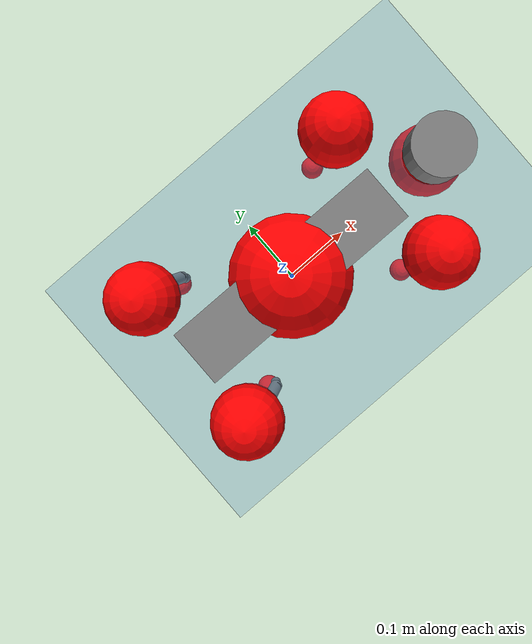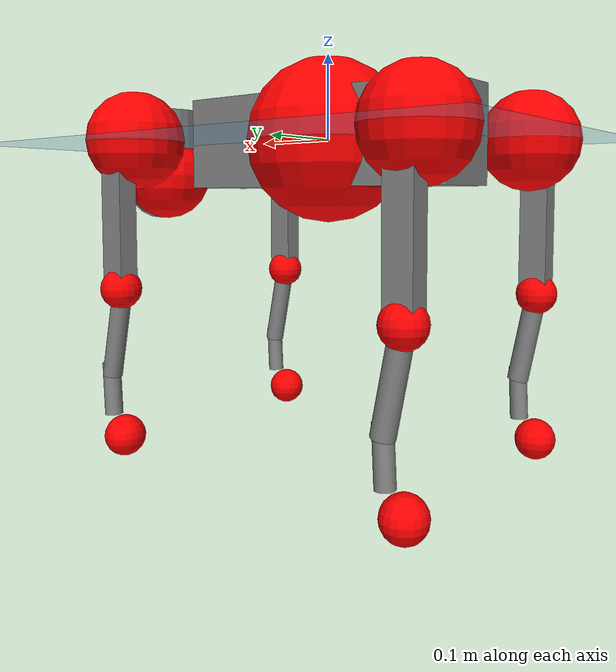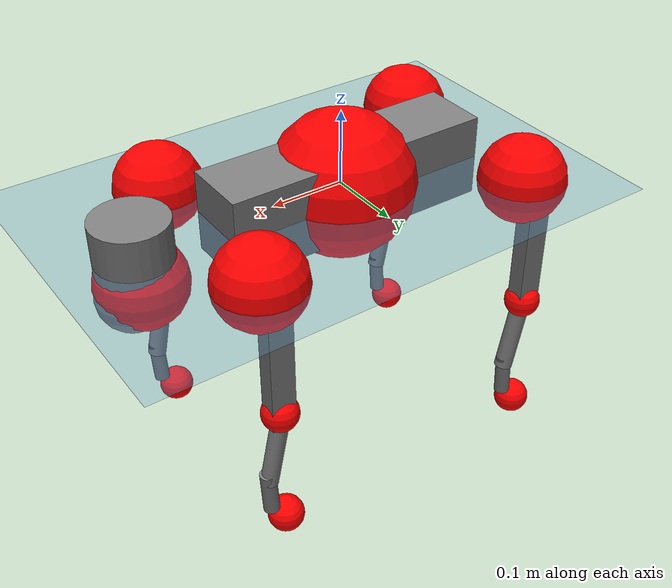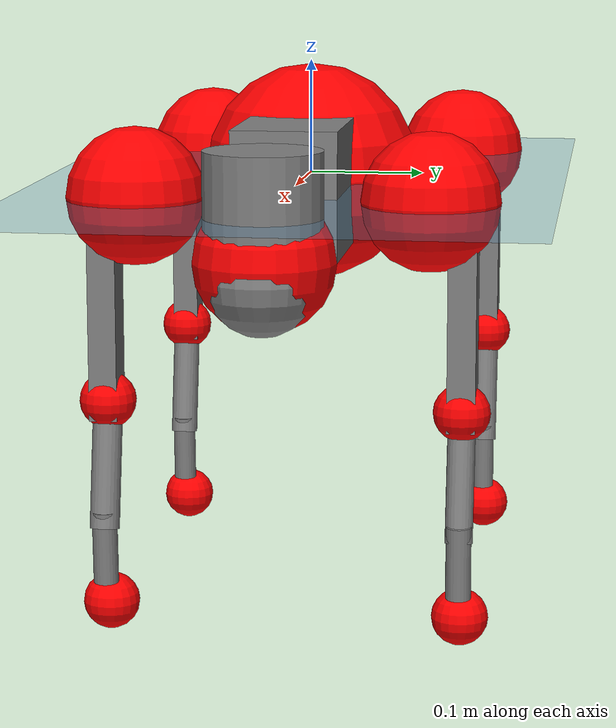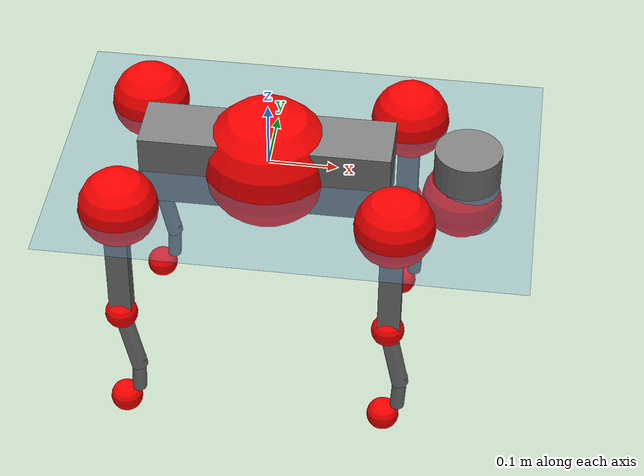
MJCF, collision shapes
<mujoco model="go2">
  <compiler angle="radian" assetdir="assets" balanceinertia="true" inertiafromgeom="false"/>

  <option timestep="0.005" density="1.2" viscosity="2e-05"/>

  <size nkey="1"/>

  <visual>
    <quality shadowsize="8192"/>
    <map shadowclip="0.5"/>
  </visual>

  <default>
    <default class="/">
      <geom contype="0" conaffinity="0" group="1" solref="-1000 -80"/>
      <site size="0.01 0.005 0.005" group="5"/>
      <general forcelimited="true" biastype="affine" gainprm="20" biasprm="0 -20 -0.5"/>
      <default class="go2">
        <joint armature="0.01" damping="0.01" frictionloss="0.2"/>
        <geom condim="1" margin="0.001"/>
        <default class="visual">
          <geom type="mesh" group="2"/>
        </default>
        <default class="collision">
          <geom group="3"/>
          <default class="foot">
            <geom size="0.022 0 0" condim="6" priority="1" friction="0.8 0.02 0.01" solimp="0.015 1 0.022"/>
          </default>
        </default>
        <default class="reward_collision_sphere">
          <geom group="5" rgba="1 0 0 1"/>
        </default>
      </default>
    </default>
  </default>

  <asset>
    <texture type="skybox" colorspace="auto" name="//unnamed_texture_0" builtin="gradient" rgb1="0.95 0.95 0.95" rgb2="0.95 0.95 0.95" width="100" height="600"/>
    <texture type="2d" colorspace="auto" name="texplane" builtin="checker" rgb1="0.345 0.575 0.748" rgb2="0.345 0.575 0.748" markrgb="1 1 1" width="512" height="512"/>
    <material name="MatPlane" class="/" texture="texplane" texuniform="true" texrepeat="2 2" specular="0.9"/>
    <material name="metal" class="/" rgba="0.9 0.95 0.95 1"/>
    <material name="black" class="/" rgba="0 0 0 1"/>
    <material name="white" class="/"/>
    <material name="gray" class="/" rgba="0.671705 0.692426 0.77427 1"/>
    <mesh name="base_0" class="/" file="base_0.obj"/>
    <mesh name="base_1" class="/" file="base_1.obj"/>
    <mesh name="base_2" class="/" file="base_2.obj"/>
    <mesh name="base_3" class="/" file="base_3.obj"/>
    <mesh name="base_4" class="/" file="base_4.obj"/>
    <mesh name="hip_0" class="/" file="hip_0.obj"/>
    <mesh name="hip_1" class="/" file="hip_1.obj"/>
    <mesh name="thigh_0" class="/" file="thigh_0.obj"/>
    <mesh name="thigh_1" class="/" file="thigh_1.obj"/>
    <mesh name="thigh_mirror_0" class="/" file="thigh_mirror_0.obj"/>
    <mesh name="thigh_mirror_1" class="/" file="thigh_mirror_1.obj"/>
    <mesh name="calf_0" class="/" file="calf_0.obj"/>
    <mesh name="calf_1" class="/" file="calf_1.obj"/>
    <mesh name="calf_mirror_0" class="/" file="calf_mirror_0.obj"/>
    <mesh name="calf_mirror_1" class="/" file="calf_mirror_1.obj"/>
    <mesh name="foot" class="/" file="foot.obj"/>
  </asset>

  <worldbody>
    <geom name="floor" class="/" size="100 100 0.125" type="plane" group="0" material="MatPlane"/>
    <light name="toplight_shadow" class="/" pos="0 0 5" dir="0.0990148 0.0990148 -0.990148" type="directional" ambient="0.04 0.04 0.04" diffuse="0.55 0.55 0.55" specular="0.12 0.12 0.12"/>
    <light name="toplight_fill" class="/" pos="0 0 5" dir="0.0990148 0.0990148 -0.990148" type="directional" castshadow="false" ambient="0.04 0.04 0.04" diffuse="0.3 0.3 0.3" specular="0.08 0.08 0.08"/>
    <body name="trunk" childclass="go2" pos="-0.00108007 0.000604597 0.000608614" quat="1 -7.54693e-06 6.37233e-07 -6.58199e-06">
      <inertial pos="0.0197496 3.23099e-05 -0.00451506" quat="-0.00210647 0.712115 -0.00314002 0.702053" mass="6.21654" diaginertia="0.113361 0.126785 0.00971519"/>
      <joint name="//unnamed_joint_0" type="free" armature="0" damping="0" frictionloss="0"/>
      <geom name="//unnamed_geom_1" class="visual" material="black" mesh="base_0"/>
      <geom name="//unnamed_geom_2" class="visual" material="black" mesh="base_1"/>
      <geom name="//unnamed_geom_3" class="visual" material="black" mesh="base_2"/>
      <geom name="//unnamed_geom_4" class="visual" material="white" mesh="base_3"/>
      <geom name="//unnamed_geom_5" class="visual" material="gray" mesh="base_4"/>
      <geom name="trunk_1" class="collision" size="0.181498 0.0451091 0.0549993" type="box"/>
      <geom name="trunk_2" class="collision" size="0.048245 0.0434205" pos="0.288298 0 0.00830386" type="cylinder"/>
      <geom name="trunk_3" class="collision" size="0.0453503" pos="0.29639 0 -0.0498232"/>
      <geom name="//unnamed_geom_9" class="reward_collision_sphere" size="0.0964901"/>
      <geom name="//unnamed_geom_10" class="reward_collision_sphere" size="0.057894" pos="0.28324 0 -0.0373674"/>
      <site name="imu" pos="-0.026915 -0.00231092 0.0345676" size="0.00964901"/>
      <camera name="track" pos="0 -2.10549 0" quat="0.707107 0.707107 0 0" mode="trackcom"/>
      <camera name="ego_camera" pos="0.31561 0 0.0373674" quat="-0.5 -0.5 0.5 0.5"/>
      <body name="FL_hip" pos="0.196053 0.0502566 0.00069084" quat="1 0.000488227 0.00016612 0.0001559">
        <inertial pos="-0.0067208 0.00311381 0.000853836" quat="0.49734 0.500312 0.504563 0.497752" mass="0.609184" diaginertia="0.000935099 0.000766462 0.000188156"/>
        <joint name="FL_hip_joint" pos="0 0 0" axis="0.999998 0.000731254 0.00159273" stiffness="0.0001397" range="-1.0432 1.03961" armature="0.00951273" damping="0.00603709" frictionloss="0.18589"/>
        <geom name="//unnamed_geom_11" class="visual" material="metal" mesh="hip_0"/>
        <geom name="//unnamed_geom_12" class="visual" material="gray" mesh="hip_1"/>
        <geom name="//unnamed_geom_13" class="collision" size="0.0443854 0.019298" pos="0 0.0842195 0" quat="0.707107 0.707107 0 0" type="cylinder"/>
        <geom name="//unnamed_geom_14" class="reward_collision_sphere" size="0.057894" pos="0 0.0736921 0"/>
        <body name="FL_thigh" pos="-0.000797899 0.101023 0.000581648" quat="1 5.16694e-05 5.33543e-05 -0.000105252">
          <inertial pos="-0.00288658 -0.0229797 -0.0264831" quat="0.829548 0.0840594 -0.0207318 0.551683" mass="1.03387" diaginertia="0.00631348 0.00758348 0.000350186"/>
          <joint name="FL_thigh_joint" pos="0 0 0" axis="5.19598e-05 1 1.38619e-05" stiffness="0.0120128" range="-1.56852 3.49196" armature="0.00945718" damping="0" frictionloss="0.183948"/>
          <geom name="//unnamed_geom_15" class="visual" material="metal" mesh="thigh_0"/>
          <geom name="//unnamed_geom_16" class="visual" material="gray" mesh="thigh_1"/>
          <geom name="//unnamed_geom_17" class="collision" size="0.102762 0.01182 0.0164033" pos="0 0 -0.0884361" quat="0.707107 0 0.707107 0" type="box"/>
          <body name="FL_calf" pos="-0.000919834 -0.000235661 -0.176765" quat="1 -0.000353745 -0.00021834 -3.29994e-05">
            <inertial pos="0.00554389 -0.0015406 -0.116652" quat="0.712245 0.00101192 -0.00446875 0.701916" mass="0.217155" diaginertia="0.00158431 0.00187167 2.11947e-05"/>
            <joint name="FL_calf_joint" pos="0 0 0" axis="0.00294202 0.999966 -0.0077612" stiffness="0.00179148" range="-2.73023 -0.837599" armature="0.0101582" damping="0.00591442" frictionloss="0.188922"/>
            <geom name="//unnamed_geom_18" class="visual" material="gray" mesh="calf_0"/>
            <geom name="//unnamed_geom_19" class="visual" material="black" mesh="calf_1"/>
            <geom name="FL_calf0" class="collision" size="0.0115788 0.057894" pos="0.00809257 0 -0.0498232" quat="0.994493 0 -0.104807 0" type="cylinder"/>
            <geom name="//unnamed_geom_21" class="collision" size="0.0106139 0.0313593" pos="0.0202314 0 -0.122897" quat="0.999688 0 0.0249974 0" type="cylinder"/>
            <geom name="//unnamed_geom_22" class="visual" pos="0 0 -0.176872" quat="1 0 0 0" material="black" mesh="foot"/>
            <geom name="FL_foot" class="foot" size="0.0153634" pos="-0.00202314 0 -0.176872"/>
            <geom name="//unnamed_geom_24" class="reward_collision_sphere" size="0.0241225"/>
            <geom name="//unnamed_geom_25" class="reward_collision_sphere" size="0.0241225" pos="-0.00202314 0 -0.176872"/>
            <site name="FL_foot" class="foot" pos="-0.00202314 0 -0.176872" size="0.00964901"/>
          </body>
        </body>
      </body>
      <body name="FR_hip" pos="0.195862 -0.0477421 0.00141479" quat="1 -0.00013632 -2.71084e-05 -1.44862e-05">
        <inertial pos="-0.00509738 -0.00174184 -0.000397601" quat="0.498966 0.505868 0.497882 0.497236" mass="0.617628" diaginertia="0.000923382 0.000760463 0.000189979"/>
        <joint name="FR_hip_joint" pos="0 0 0" axis="0.999995 0.00319419 -0.000539116" stiffness="0.0035264" range="-1.06867 1.0482" armature="0.00903746" damping="0.0194537" frictionloss="0.204234"/>
        <geom name="//unnamed_geom_26" class="visual" pos="0 1.93709e-09 8.30858e-08" quat="4.63268e-05 1 0 0" material="metal" mesh="hip_0"/>
        <geom name="//unnamed_geom_27" class="visual" pos="0 3.14025e-09 -2.05503e-07" quat="4.63268e-05 1 0 0" material="gray" mesh="hip_1"/>
        <geom name="//unnamed_geom_28" class="collision" size="0.0443854 0.019298" pos="0 -0.0842195 0" quat="0.707107 0.707107 0 0" type="cylinder"/>
        <geom name="//unnamed_geom_29" class="reward_collision_sphere" size="0.057894" pos="0 -0.0736921 0"/>
        <body name="FR_thigh" pos="3.51473e-05 -0.100797 0.00152162" quat="1 -0.000127536 -0.00021103 -0.00020519">
          <inertial pos="-0.00312112 0.0222496 -0.0269927" quat="0.55276 -0.0205888 0.0861753 0.828617" mass="1.02184" diaginertia="0.00635529 0.00767209 0.000349233"/>
          <joint name="FR_thigh_joint" pos="0 0 0" axis="-0.00401776 -0.999992 -0.00078173" range="-3.49071 1.58296" armature="0.00965751" damping="0.0100238" frictionloss="0.185735"/>
          <geom name="//unnamed_geom_30" class="visual" material="metal" mesh="thigh_mirror_0"/>
          <geom name="//unnamed_geom_31" class="visual" material="gray" mesh="thigh_mirror_1"/>
          <geom name="//unnamed_geom_32" class="collision" size="0.102762 0.01182 0.0164033" pos="0 0 -0.0884361" quat="0.707107 0 0.707107 0" type="box"/>
          <body name="FR_calf" pos="-0.00131446 0.000876121 -0.176043" quat="1 8.10564e-05 1.26742e-05 4.49303e-05">
            <inertial pos="0.00543735 0.000903967 -0.117566" quat="0.704375 -0.00550482 8.77638e-05 0.709807" mass="0.217423" diaginertia="0.00158473 0.00190594 2.09131e-05"/>
            <joint name="FR_calf_joint" pos="0 0 0" axis="-0.00340954 -0.99998 0.00534136" stiffness="0.00225458" range="0.834425 2.72407" armature="0.0095382" damping="0.00421752" frictionloss="0.195694"/>
            <geom name="//unnamed_geom_33" class="visual" material="gray" mesh="calf_mirror_0"/>
            <geom name="//unnamed_geom_34" class="visual" material="black" mesh="calf_mirror_1"/>
            <geom name="FR_calf0" class="collision" size="0.0125437 0.057894" pos="0.0101157 0 -0.0498232" quat="0.995004 0 -0.0998334 0" type="cylinder"/>
            <geom name="//unnamed_geom_36" class="collision" size="0.0106139 0.0313593" pos="0.0202314 0 -0.122897" quat="0.999688 0 0.0249974 0" type="cylinder"/>
            <geom name="//unnamed_geom_37" class="visual" pos="0 0 -0.176872" quat="1 0 0 0" material="black" mesh="foot"/>
            <geom name="FR_foot" class="foot" size="0.0218267" pos="-0.00202314 0 -0.176872"/>
            <geom name="//unnamed_geom_39" class="reward_collision_sphere" size="0.0241225"/>
            <geom name="//unnamed_geom_40" class="reward_collision_sphere" size="0.0241225" pos="-0.00202314 0 -0.176872"/>
            <site name="FR_foot" class="foot" pos="-0.00202314 0 -0.176872" size="0.00964901"/>
          </body>
        </body>
      </body>
      <body name="RL_hip" pos="-0.194843 0.0480581 -0.00142688" quat="1 0.000148323 0.000757173 0.000570039">
        <inertial pos="0.00623615 0.00196471 0.000486182" quat="0.50549 0.498159 0.497048 0.49926" mass="0.609682" diaginertia="0.000933337 0.000763289 0.00018825"/>
        <joint name="RL_hip_joint" pos="0 0 0" axis="-0.999827 -0.018243 -0.00357011" range="-1.06086 1.05523" armature="0.00958781" damping="0.0177237" frictionloss="0.187561"/>
        <geom name="//unnamed_geom_41" class="visual" pos="-1.57841e-09 0 -3.09404e-07" quat="4.63268e-05 0 1 0" material="metal" mesh="hip_0"/>
        <geom name="//unnamed_geom_42" class="visual" pos="-2.55879e-09 0 -2.74398e-07" quat="4.63268e-05 0 1 0" material="gray" mesh="hip_1"/>
        <geom name="//unnamed_geom_43" class="collision" size="0.0443854 0.019298" pos="0 0.0842195 0" quat="0.707107 0.707107 0 0" type="cylinder"/>
        <geom name="//unnamed_geom_44" class="reward_collision_sphere" size="0.057894" pos="0 0.0736921 0"/>
        <body name="RL_thigh" pos="-0.00117788 0.0989928 -0.000858046" quat="1 -2.05599e-05 -2.95783e-05 -0.000506158">
          <inertial pos="-0.00381893 -0.0238481 -0.0276939" quat="0.828982 0.0863175 -0.0211814 0.552168" mass="1.03357" diaginertia="0.00630959 0.0075762 0.000346006"/>
          <joint name="RL_thigh_joint" pos="0 0 0" axis="0.00410653 0.999967 -0.00706417" range="-0.530261 4.5437" armature="0.00996126" damping="0" frictionloss="0.196812"/>
          <geom name="//unnamed_geom_45" class="visual" material="metal" mesh="thigh_0"/>
          <geom name="//unnamed_geom_46" class="visual" material="gray" mesh="thigh_1"/>
          <geom name="//unnamed_geom_47" class="collision" size="0.102762 0.01182 0.0164033" pos="0 0 -0.0884361" quat="0.707107 0 0.707107 0" type="box"/>
          <body name="RL_calf" pos="0.000206758 -0.000318325 -0.178598" quat="1 -9.5322e-05 -0.000161789 9.55222e-05">
            <inertial pos="0.00639508 -0.000469466 -0.118177" quat="0.710982 0.00151927 -0.00430919 0.703195" mass="0.217343" diaginertia="0.0015813 0.00189032 2.11098e-05"/>
            <joint name="RL_calf_joint" pos="0 0 0" axis="-0.00558404 0.999939 0.0095471" range="-2.72355 -0.838047" armature="0.00988402" damping="0" frictionloss="0.194903"/>
            <geom name="//unnamed_geom_48" class="visual" material="gray" mesh="calf_0"/>
            <geom name="//unnamed_geom_49" class="visual" material="black" mesh="calf_1"/>
            <geom name="RL_calf0" class="collision" size="0.0125437 0.057894" pos="0.0101157 0 -0.0498232" quat="0.995004 0 -0.0998334 0" type="cylinder"/>
            <geom name="//unnamed_geom_51" class="collision" size="0.0106139 0.0313593" pos="0.0202314 0 -0.122897" quat="0.999688 0 0.0249974 0" type="cylinder"/>
            <geom name="//unnamed_geom_52" class="visual" pos="0 0 -0.176872" quat="1 0 0 0" material="black" mesh="foot"/>
            <geom name="RL_foot" class="foot" size="0.0190102" pos="-0.00202314 0 -0.176872"/>
            <geom name="//unnamed_geom_54" class="reward_collision_sphere" size="0.0241225"/>
            <geom name="//unnamed_geom_55" class="reward_collision_sphere" size="0.0241225" pos="-0.00202314 0 -0.176872"/>
            <site name="RL_foot" class="foot" pos="-0.00202314 0 -0.176872" size="0.00964901"/>
          </body>
        </body>
      </body>
      <body name="RR_hip" pos="-0.19572 -0.0513054 -0.00234765" quat="1 0.000208572 -0.000281532 0.000181856">
        <inertial pos="0.0054337 -0.00204822 -2.66269e-05" quat="0.501368 0.49484 0.499197 0.504545" mass="0.608627" diaginertia="0.000925776 0.000762886 0.000191118"/>
        <joint name="RR_hip_joint" pos="0 0 0" axis="-0.999997 0.00225934 2.39681e-05" range="-1.03639 1.04706" armature="0.0101626" damping="0.0146358" frictionloss="0.189182"/>
        <geom name="//unnamed_geom_56" class="visual" pos="1.57983e-09 1.93709e-09 -3.9249e-07" quat="2.14617e-09 4.63268e-05 4.63268e-05 -1" material="metal" mesh="hip_0"/>
        <geom name="//unnamed_geom_57" class="visual" pos="2.55526e-09 3.14025e-09 -6.88947e-08" quat="2.14617e-09 4.63268e-05 4.63268e-05 -1" material="gray" mesh="hip_1"/>
        <geom name="//unnamed_geom_58" class="collision" size="0.0443854 0.019298" pos="0 -0.0842195 0" quat="0.707107 0.707107 0 0" type="cylinder"/>
        <geom name="//unnamed_geom_59" class="reward_collision_sphere" size="0.057894" pos="0 -0.0736921 0"/>
        <body name="RR_thigh" pos="0.00099549 -0.100893 -0.00192952" quat="1 1.79681e-05 2.71124e-05 -8.06102e-05">
          <inertial pos="-0.00353631 0.0243163 -0.027523" quat="0.551668 -0.0198134 0.0850855 0.829476" mass="1.05339" diaginertia="0.00639942 0.00758505 0.00034631"/>
          <joint name="RR_thigh_joint" pos="0 0 0" axis="-0.00271762 -0.999985 0.00466463" stiffness="0.000779836" range="-4.5525 0.506924" armature="0.00917121" damping="0.0164042" frictionloss="0.191542"/>
          <geom name="//unnamed_geom_60" class="visual" material="metal" mesh="thigh_mirror_0"/>
          <geom name="//unnamed_geom_61" class="visual" material="gray" mesh="thigh_mirror_1"/>
          <geom name="//unnamed_geom_62" class="collision" size="0.102762 0.01182 0.0164033" pos="0 0 -0.0884361" quat="0.707107 0 0.707107 0" type="box"/>
          <body name="RR_calf" pos="-0.000948329 -0.00153229 -0.17796" quat="1 -8.81466e-06 0.000160478 -6.76017e-05">
            <inertial pos="0.00768299 0.000501198 -0.118537" quat="0.702125 -0.00654372 0.00269002 0.712018" mass="0.217277" diaginertia="0.00153564 0.00187501 2.04718e-05"/>
            <joint name="RR_calf_joint" pos="0 0 0" axis="-0.00349034 -0.999994 0.000347649" stiffness="3.62124e-05" range="0.828511 2.75885" armature="0.00976735" damping="0.01085" frictionloss="0.194138"/>
            <geom name="//unnamed_geom_63" class="visual" material="gray" mesh="calf_mirror_0"/>
            <geom name="//unnamed_geom_64" class="visual" material="black" mesh="calf_mirror_1"/>
            <geom name="RR_calf0" class="collision" size="0.0125437 0.057894" pos="0.0101157 0 -0.0498232" quat="0.995004 0 -0.0998334 0" type="cylinder"/>
            <geom name="//unnamed_geom_66" class="collision" size="0.0106139 0.0313593" pos="0.0202314 0 -0.122897" quat="0.999688 0 0.0249974 0" type="cylinder"/>
            <geom name="//unnamed_geom_67" class="visual" pos="0 0 -0.176872" quat="1 0 0 0" material="black" mesh="foot"/>
            <geom name="RR_foot" class="foot" size="0.0231088" pos="-0.00202314 0 -0.176872"/>
            <geom name="//unnamed_geom_69" class="reward_collision_sphere" size="0.0241225"/>
            <geom name="//unnamed_geom_70" class="reward_collision_sphere" size="0.0241225" pos="-0.00202314 0 -0.176872"/>
            <site name="RR_foot" class="foot" pos="-0.00202314 0 -0.176872" size="0.00964901"/>
          </body>
        </body>
      </body>
    </body>
  </worldbody>

  <contact>
    <pair class="/" geom1="floor" geom2="FL_foot" name="//unnamed_contact_0"/>
    <pair class="/" geom1="floor" geom2="FR_foot" name="//unnamed_contact_1"/>
    <pair class="/" geom1="floor" geom2="RL_foot" name="//unnamed_contact_2"/>
    <pair class="/" geom1="floor" geom2="RR_foot" name="//unnamed_contact_3"/>
  </contact>

  <actuator>
    <general name="FL_hip" class="/" joint="FL_hip_joint" forcerange="-22.9374 22.9374" gainprm="19.3497" biasprm="0 -19.3497 -0.483471"/>
    <general name="FL_thigh" class="/" joint="FL_thigh_joint" forcerange="-23.7359 23.7359" gainprm="19.3497" biasprm="0 -19.3497 -0.483471"/>
    <general name="FL_calf" class="/" joint="FL_calf_joint" forcerange="-43.3749 43.3749" gainprm="19.3497" biasprm="0 -19.3497 -0.483471"/>
    <general name="FR_hip" class="/" joint="FR_hip_joint" forcerange="-24.0631 24.0631" gainprm="19.3497" biasprm="0 -19.3497 -0.483471"/>
    <general name="FR_thigh" class="/" joint="FR_thigh_joint" forcerange="-22.8478 22.8478" gainprm="19.3497" biasprm="0 -19.3497 -0.483471"/>
    <general name="FR_calf" class="/" joint="FR_calf_joint" forcerange="-44.1493 44.1493" gainprm="19.3497" biasprm="0 -19.3497 -0.483471"/>
    <general name="RL_hip" class="/" joint="RL_hip_joint" forcerange="-22.6684 22.6684" gainprm="19.3497" biasprm="0 -19.3497 -0.483471"/>
    <general name="RL_thigh" class="/" joint="RL_thigh_joint" forcerange="-22.8383 22.8383" gainprm="19.3497" biasprm="0 -19.3497 -0.483471"/>
    <general name="RL_calf" class="/" joint="RL_calf_joint" forcerange="-44.3806 44.3806" gainprm="19.3497" biasprm="0 -19.3497 -0.483471"/>
    <general name="RR_hip" class="/" joint="RR_hip_joint" forcerange="-23.236 23.236" gainprm="19.3497" biasprm="0 -19.3497 -0.483471"/>
    <general name="RR_thigh" class="/" joint="RR_thigh_joint" forcerange="-22.9563 22.9563" gainprm="19.3497" biasprm="0 -19.3497 -0.483471"/>
    <general name="RR_calf" class="/" joint="RR_calf_joint" forcerange="-45.3604 45.3604" gainprm="19.3497" biasprm="0 -19.3497 -0.483471"/>
  </actuator>

  <sensor>
    <gyro site="imu" name="imu_angular_velocity"/>
    <velocimeter site="imu" name="imu_linear_velocity"/>
    <framelinvel objtype="site" objname="FL_foot" name="FL_foot_global_linear_velocity"/>
    <framelinvel objtype="site" objname="FR_foot" name="FR_foot_global_linear_velocity"/>
    <framelinvel objtype="site" objname="RL_foot" name="RL_foot_global_linear_velocity"/>
    <framelinvel objtype="site" objname="RR_foot" name="RR_foot_global_linear_velocity"/>
  </sensor>

  <keyframe>
    <key name="home" qpos="0 0 0.325 1 0 0 0 0.1 0.8 -1.5 -0.1 -0.8 1.5 -0.1 0.8 -1.5 0.1 -0.8 1.5"/>
  </keyframe>
</mujoco>
